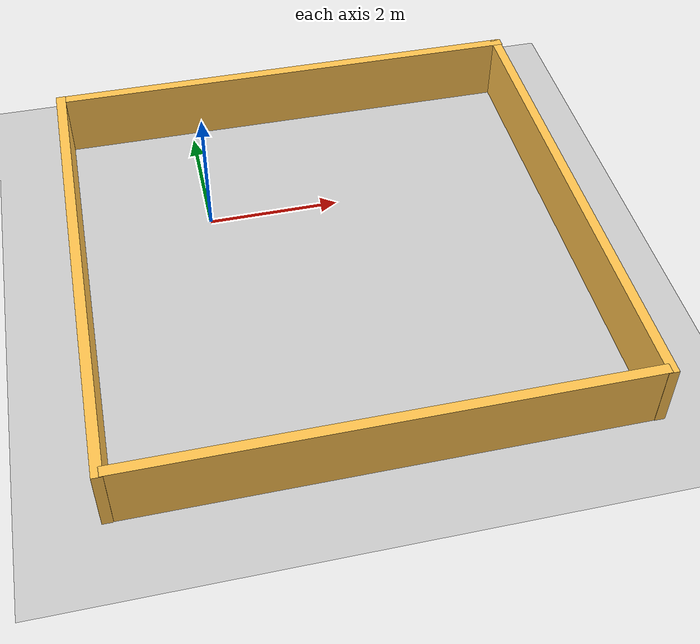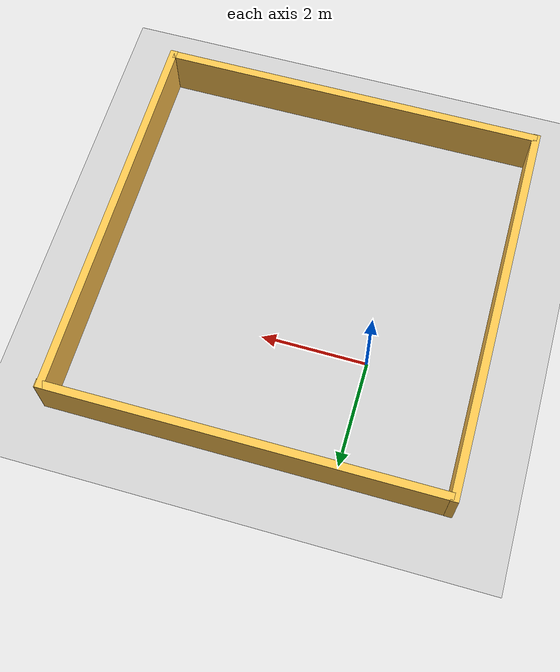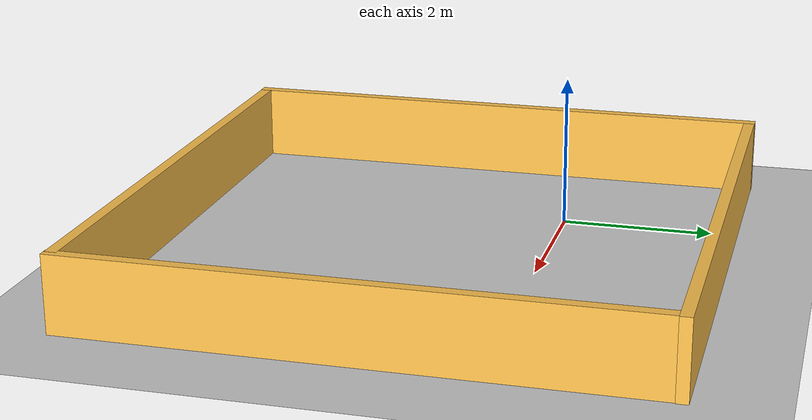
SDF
<sdf version="1.6">
 <world name="default">
  <light name="sun" type="directional">
   <pose>0 0 10 0 -0 0</pose>
   <diffuse>0.8 0.8 0.8 1</diffuse>
   <specular>0.2 0.2 0.2 1</specular>
   <attenuation>
    <range>1000</range>
    <constant>0.9</constant>
    <linear>0.01</linear>
    <quadratic>0.001</quadratic>
   </attenuation>
   <direction>0.5 0.1 -0.9</direction>
  </light>
  <model name="ground_plane">
   <static>1</static>
   <link name="link">
    <collision name="collision">
     <geometry><plane><normal>0 0 1</normal><size>100 100</size></plane></geometry>
     <surface><friction><ode><mu>100</mu><mu2>50</mu2></ode></friction></surface>
    </collision>
    <visual name="visual">
     <cast_shadows>0</cast_shadows>
     <geometry><plane><normal>0 0 1</normal><size>100 100</size></plane></geometry>
     <material>
      <script><uri>file://media/materials/scripts/gazebo.material</uri><name>Gazebo/Grey</name></script>
     </material>
    </visual>
    <velocity_decay><linear>0</linear><angular>0</angular></velocity_decay>
   </link>
  </model>
  <scene><ambient>0.4 0.4 0.4 1</ambient><background>0.7 0.7 0.7 1</background><shadows>0</shadows></scene>
  <physics name="default_physics" default="0" type="ode">
   <max_step_size>0.01</max_step_size>
   <real_time_factor>1</real_time_factor>
   <real_time_update_rate>0</real_time_update_rate>
  </physics>
  <gravity>0 0 -9.8</gravity>
  <magnetic_field>6e-06 2.3e-05 -4.2e-05</magnetic_field>
  <atmosphere type="adiabatic"/>
  <audio><device>default</device></audio>
  <spherical_coordinates>
   <surface_model>EARTH_WGS84</surface_model>
   <latitude_deg>0</latitude_deg>
   <longitude_deg>0</longitude_deg>
   <elevation>0</elevation>
   <heading_deg>0</heading_deg>
  </spherical_coordinates>
  <model name="DEBUG">
   <link name="Wall_11_clone">
    <pose>-4.44208 0.738947 0 0 0 -1.5708</pose>
    <visual name="ModelPreview_2::Wall_11_clone::Wall_11_Visual">
     <pose>0 0 0.5 0 -0 0</pose>
     <geometry><box><size>7.42809 0.15 1</size></box></geometry>
     <material>
      <script><uri>file://media/materials/scripts/gazebo.material</uri><name>Gazebo/Grey</name></script>
      <ambient>1 0.764706 0.305882 1</ambient>
      <diffuse>0.7 0.7 0.7 1</diffuse>
      <specular>0.01 0.01 0.01 1</specular>
      <emissive>0 0 0 1</emissive>
      <shader type="pixel"/>
     </material>
    </visual>
    <collision name="Wall_11_Collision">
     <pose>0 0 0.5 0 -0 0</pose>
     <geometry><box><size>7.42809 0.15 1</size></box></geometry>
     <surface>
      <friction>
       <ode><mu>1</mu><mu2>1</mu2><fdir1>0 0 0</fdir1><slip1>0</slip1><slip2>0</slip2></ode>
       <torsional>
        <coefficient>1</coefficient>
        <patch_radius>0</patch_radius>
        <surface_radius>0</surface_radius>
        <use_patch_radius>1</use_patch_radius>
        <ode><slip>0</slip></ode>
       </torsional>
      </friction>
      <bounce><restitution_coefficient>0</restitution_coefficient><threshold>1e+06</threshold></bounce>
      <contact>
       <collide_without_contact>0</collide_without_contact>
       <collide_without_contact_bitmask>1</collide_without_contact_bitmask>
       <collide_bitmask>1</collide_bitmask>
       <ode>
        <soft_cfm>0</soft_cfm>
        <soft_erp>0.2</soft_erp>
        <kp>1e+13</kp>
        <kd>1</kd>
        <max_vel>0.01</max_vel>
        <min_depth>0</min_depth>
       </ode>
       <bullet>
        <split_impulse>1</split_impulse>
        <split_impulse_penetration_threshold>-0.01</split_impulse_penetration_threshold>
        <soft_cfm>0</soft_cfm>
        <soft_erp>0.2</soft_erp>
        <kp>1e+13</kp>
        <kd>1</kd>
       </bullet>
      </contact>
     </surface>
    </collision>
   </link>
   <link name="Wall_6">
    <pose>-0.787021 -2.89307 0 0 -0 0</pose>
    <visual name="Wall_6_Visual">
     <pose>0 0 0.5 0 -0 0</pose>
     <geometry><box><size>7.34986 0.15 1</size></box></geometry>
     <material>
      <script><uri>file://media/materials/scripts/gazebo.material</uri><name>Gazebo/Grey</name></script>
      <ambient>1 0.764706 0.305882 1</ambient>
      <diffuse>0.7 0.7 0.7 1</diffuse>
      <specular>0.01 0.01 0.01 1</specular>
      <emissive>0 0 0 1</emissive>
      <shader type="pixel"/>
     </material>
    </visual>
    <collision name="Wall_6_Collision">
     <pose>0 0 0.5 0 -0 0</pose>
     <geometry><box><size>7.34986 0.15 1</size></box></geometry>
     <surface>
      <friction>
       <ode><mu>1</mu><mu2>1</mu2><fdir1>0 0 0</fdir1><slip1>0</slip1><slip2>0</slip2></ode>
       <torsional>
        <coefficient>1</coefficient>
        <patch_radius>0</patch_radius>
        <surface_radius>0</surface_radius>
        <use_patch_radius>1</use_patch_radius>
        <ode><slip>0</slip></ode>
       </torsional>
      </friction>
      <bounce><restitution_coefficient>0</restitution_coefficient><threshold>1e+06</threshold></bounce>
      <contact>
       <collide_without_contact>0</collide_without_contact>
       <collide_without_contact_bitmask>1</collide_without_contact_bitmask>
       <collide_bitmask>1</collide_bitmask>
       <ode>
        <soft_cfm>0</soft_cfm>
        <soft_erp>0.2</soft_erp>
        <kp>1e+13</kp>
        <kd>1</kd>
        <max_vel>0.01</max_vel>
        <min_depth>0</min_depth>
       </ode>
       <bullet>
        <split_impulse>1</split_impulse>
        <split_impulse_penetration_threshold>-0.01</split_impulse_penetration_threshold>
        <soft_cfm>0</soft_cfm>
        <soft_erp>0.2</soft_erp>
        <kp>1e+13</kp>
        <kd>1</kd>
       </bullet>
      </contact>
     </surface>
    </collision>
   </link>
   <link name="Wall_6_clone">
    <pose>-0.718431 4.37517 0 0 -0 0</pose>
    <visual name="ModelPreview_2::Wall_6_clone::Wall_6_Visual">
     <pose>0 0 0.5 0 -0 0</pose>
     <geometry><box><size>7.41907 0.15 1</size></box></geometry>
     <material>
      <script><uri>file://media/materials/scripts/gazebo.material</uri><name>Gazebo/Grey</name></script>
      <ambient>1 0.764706 0.305882 1</ambient>
      <diffuse>0.7 0.7 0.7 1</diffuse>
      <specular>0.01 0.01 0.01 1</specular>
      <emissive>0 0 0 1</emissive>
      <shader type="pixel"/>
     </material>
    </visual>
    <collision name="Wall_6_Collision">
     <pose>0 0 0.5 0 -0 0</pose>
     <geometry><box><size>7.41907 0.15 1</size></box></geometry>
     <surface>
      <friction>
       <ode><mu>1</mu><mu2>1</mu2><fdir1>0 0 0</fdir1><slip1>0</slip1><slip2>0</slip2></ode>
       <torsional>
        <coefficient>1</coefficient>
        <patch_radius>0</patch_radius>
        <surface_radius>0</surface_radius>
        <use_patch_radius>1</use_patch_radius>
        <ode><slip>0</slip></ode>
       </torsional>
      </friction>
      <bounce><restitution_coefficient>0</restitution_coefficient><threshold>1e+06</threshold></bounce>
      <contact>
       <collide_without_contact>0</collide_without_contact>
       <collide_without_contact_bitmask>1</collide_without_contact_bitmask>
       <collide_bitmask>1</collide_bitmask>
       <ode>
        <soft_cfm>0</soft_cfm>
        <soft_erp>0.2</soft_erp>
        <kp>1e+13</kp>
        <kd>1</kd>
        <max_vel>0.01</max_vel>
        <min_depth>0</min_depth>
       </ode>
       <bullet>
        <split_impulse>1</split_impulse>
        <split_impulse_penetration_threshold>-0.01</split_impulse_penetration_threshold>
        <soft_cfm>0</soft_cfm>
        <soft_erp>0.2</soft_erp>
        <kp>1e+13</kp>
        <kd>1</kd>
       </bullet>
      </contact>
     </surface>
    </collision>
   </link>
   <link name="Wall_7">
    <pose>2.90228 0.736783 0 0 -0 1.5708</pose>
    <visual name="Wall_7_Visual">
     <pose>0 0 0.5 0 -0 0</pose>
     <geometry><box><size>7.42238 0.15 1</size></box></geometry>
     <material>
      <script><uri>file://media/materials/scripts/gazebo.material</uri><name>Gazebo/Grey</name></script>
      <ambient>1 0.764706 0.305882 1</ambient>
      <diffuse>0.7 0.7 0.7 1</diffuse>
      <specular>0.01 0.01 0.01 1</specular>
      <emissive>0 0 0 1</emissive>
      <shader type="pixel"/>
     </material>
    </visual>
    <collision name="Wall_7_Collision">
     <pose>0 0 0.5 0 -0 0</pose>
     <geometry><box><size>7.42238 0.15 1</size></box></geometry>
     <surface>
      <friction>
       <ode><mu>1</mu><mu2>1</mu2><fdir1>0 0 0</fdir1><slip1>0</slip1><slip2>0</slip2></ode>
       <torsional>
        <coefficient>1</coefficient>
        <patch_radius>0</patch_radius>
        <surface_radius>0</surface_radius>
        <use_patch_radius>1</use_patch_radius>
        <ode><slip>0</slip></ode>
       </torsional>
      </friction>
      <bounce><restitution_coefficient>0</restitution_coefficient><threshold>1e+06</threshold></bounce>
      <contact>
       <collide_without_contact>0</collide_without_contact>
       <collide_without_contact_bitmask>1</collide_without_contact_bitmask>
       <collide_bitmask>1</collide_bitmask>
       <ode>
        <soft_cfm>0</soft_cfm>
        <soft_erp>0.2</soft_erp>
        <kp>1e+13</kp>
        <kd>1</kd>
        <max_vel>0.01</max_vel>
        <min_depth>0</min_depth>
       </ode>
       <bullet>
        <split_impulse>1</split_impulse>
        <split_impulse_penetration_threshold>-0.01</split_impulse_penetration_threshold>
        <soft_cfm>0</soft_cfm>
        <soft_erp>0.2</soft_erp>
        <kp>1e+13</kp>
        <kd>1</kd>
       </bullet>
      </contact>
     </surface>
    </collision>
   </link>
   <static>1</static>
   <pose>2.4 -2.1 0 0 -0 0</pose>
  </model>
 </world>
</sdf>
